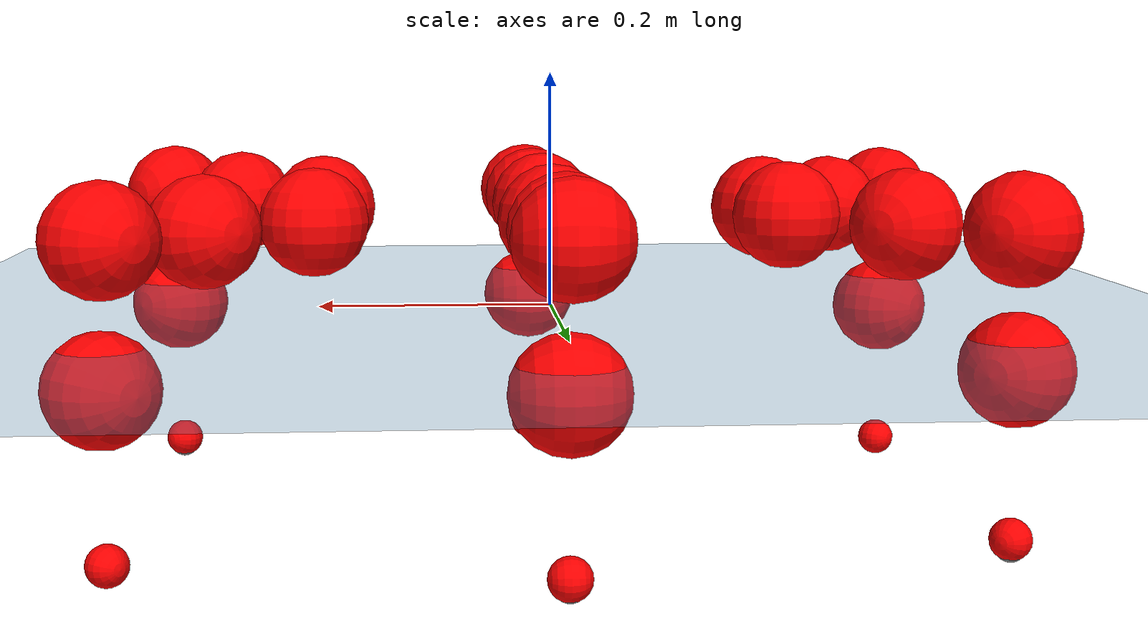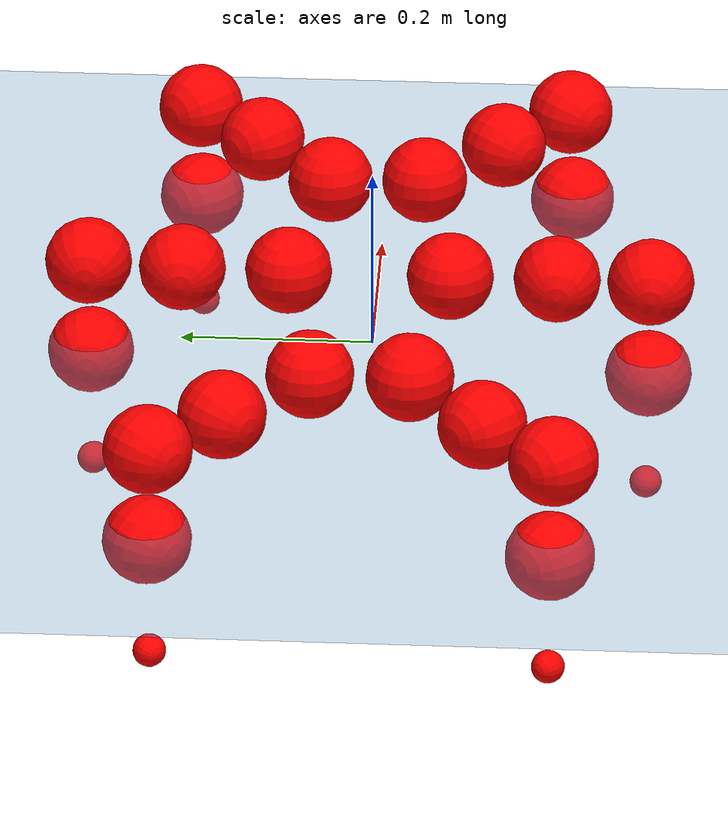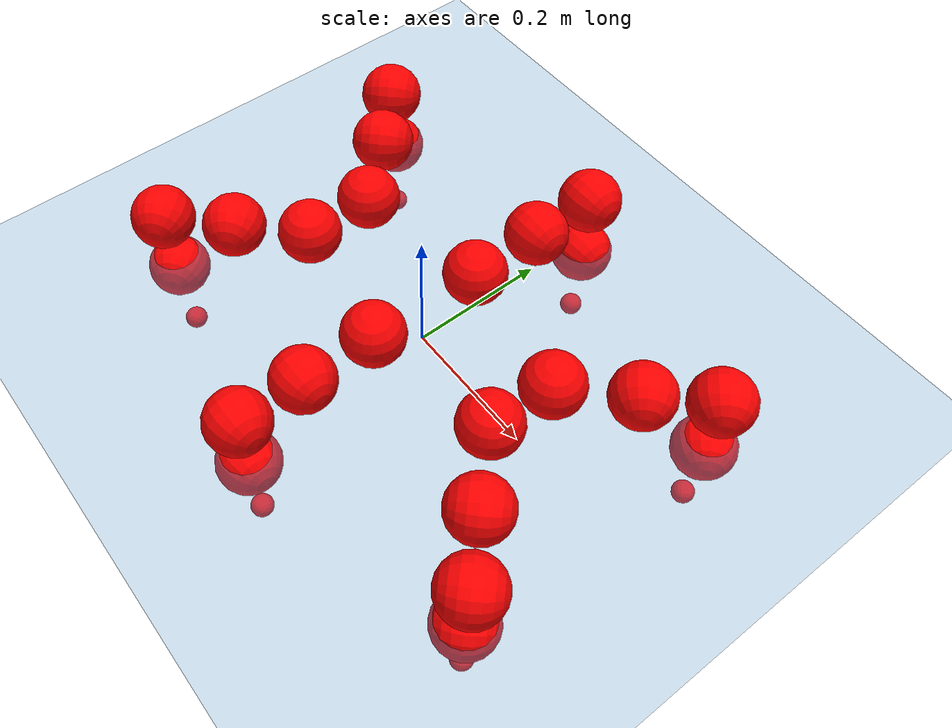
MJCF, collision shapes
<mujoco model="Golem">
  <compiler angle="radian" assetdir="assets" balanceinertia="true" inertiafromgeom="false"/>

  <option timestep="0.005" density="1.2" viscosity="2e-05"/>

  <size nkey="1"/>

  <visual>
    <quality shadowsize="8192"/>
    <map shadowclip="0.5"/>
  </visual>

  <default>
    <default class="/">
      <joint armature="0.01" damping="0.01" frictionloss="0.01"/>
      <geom contype="0" conaffinity="0" group="1" solref="-1000 -80"/>
      <site size="0.01 0.005 0.005" group="5"/>
      <general forcelimited="true" biastype="affine" gainprm="25" biasprm="0 -25 -0.5"/>
      <default class="visual">
        <geom type="mesh" group="2"/>
      </default>
      <default class="collision">
        <geom group="3"/>
      </default>
      <default class="foot">
        <geom size="0.01 0 0" condim="6" group="4" priority="1" solimp="0.015 1 0.01"/>
      </default>
      <default class="reward_collision_sphere">
        <geom group="5" rgba="1 0 0 1"/>
      </default>
    </default>
  </default>

  <asset>
    <texture type="skybox" colorspace="auto" name="//unnamed_texture_0" builtin="gradient" rgb1="0.95 0.95 0.95" rgb2="0.95 0.95 0.95" width="100" height="600"/>
    <texture type="2d" colorspace="auto" name="texplane" builtin="checker" rgb1="0.345 0.575 0.748" rgb2="0.345 0.575 0.748" markrgb="1 1 1" width="512" height="512"/>
    <material name="MatPlane" class="/" texture="texplane" texuniform="true" texrepeat="2 2" specular="0.9"/>
    <mesh name="body" class="/" file="body.stl" scale="0.001 0.001 0.001"/>
    <mesh name="coxa" class="/" file="coxa.stl" scale="0.001 0.001 0.001"/>
    <mesh name="femur" class="/" file="femur.stl" scale="0.001 0.001 0.001"/>
    <mesh name="tibia" class="/" file="tibia.stl" scale="0.001 0.001 0.001"/>
    <mesh name="tarsus" class="/" file="tarsus.stl" scale="0.001 0.001 0.001"/>
  </asset>

  <worldbody>
    <geom name="floor" class="/" size="100 100 0.125" type="plane" group="0" material="MatPlane"/>
    <light name="toplight_shadow" class="/" pos="0 0 5" dir="0.0990148 0.0990148 -0.990148" type="directional" ambient="0.04 0.04 0.04" diffuse="0.55 0.55 0.55" specular="0.12 0.12 0.12"/>
    <light name="toplight_fill" class="/" pos="0 0 5" dir="0.0990148 0.0990148 -0.990148" type="directional" castshadow="false" ambient="0.04 0.04 0.04" diffuse="0.3 0.3 0.3" specular="0.08 0.08 0.08"/>
    <body name="trunk" pos="0.00208723 0.0026369 0.00243717" quat="1 -8.51264e-05 2.79912e-05 4.87676e-05">
      <inertial pos="0.000736302 -0.000786279 -0.00135096" quat="1 0.000420799 -0.000479524 0.000302207" mass="5.33826" diaginertia="0.0285962 0.00643232 0.0270643"/>
      <joint name="//unnamed_joint_0" type="free"/>
      <geom name="//unnamed_geom_1" class="/" pos="0 0 0.0780358" quat="1 0 0 0" type="mesh" rgba="0.9 0.9 0.9 1" mesh="body"/>
      <site name="imu" class="/" pos="0.174251 0.0126712 0.12499" size="0.0112744"/>
      <camera name="track" class="/" pos="0 -1.83001 0" quat="0.707107 0.707107 0 0" mode="trackcom"/>
      <camera name="ego_camera" class="/" pos="0.162239 0 0.121931" quat="-0.5 -0.5 0.5 0.5"/>
      <body name="coxa_RR" pos="-0.222463 -0.0773229 0.0779482" quat="0.382628 0.000153324 0.000258344 -0.923903">
        <inertial pos="-0.0005484 -0.0017681 -0.00147681" quat="0.9999 0.00452003 -0.0133136 0.00149044" mass="0.278277" diaginertia="0.0290177 0.0061471 0.0258325"/>
        <joint name="coxa_joint_RR" class="/" pos="0 0 0" axis="-0.00492734 0.00109342 -0.999987" range="-3.13747 3.14552" armature="0.00989426" damping="0" frictionloss="0.0112009"/>
        <geom name="//unnamed_geom_2" class="/" type="mesh" rgba="0.2 0.2 0.2 1" mesh="coxa"/>
        <geom name="//unnamed_geom_3" class="reward_collision_sphere" size="0.0450975" pos="-0.0374399 0 0"/>
        <body name="femur_RR" pos="0.0716333 -0.00135218 -0.00440777" quat="0.499968 -0.500027 0.49982 0.500185">
          <inertial pos="-0.00220329 -0.00154779 -0.000130224" quat="0.999993 0.00343544 -4.64355e-05 -0.0012565" mass="0.288729" diaginertia="0.0305611 0.00650156 0.0276026"/>
          <joint name="femur_joint_RR" class="/" pos="0 0 0" axis="-0.000743575 -0.00181928 -0.999998" range="-3.19086 3.08233" armature="0.0111422" damping="0.00964315" frictionloss="0.0127924"/>
          <geom name="//unnamed_geom_4" class="/" type="mesh" rgba="0.9 0.9 0.9 1" mesh="femur"/>
          <geom name="//unnamed_geom_5" class="reward_collision_sphere" size="0.0450975"/>
          <body name="tibia_RR" pos="-0.00422499 -0.101196 0.00202462" quat="-0.000878302 1 5.9013e-05 -2.56077e-05">
            <inertial pos="-0.00258633 0.000300879 0.000243312" quat="1 -0.00011192 -6.72896e-05 -5.21196e-06" mass="0.286766" diaginertia="0.0296535 0.00617193 0.0251667"/>
            <joint name="tibia_joint_RR" class="/" pos="0 0 0" axis="-0.00843816 -0.00859176 0.999927" range="-3.10069 3.19277" armature="0.0117368" damping="0.000657352" frictionloss="0.0112187"/>
            <geom name="//unnamed_geom_6" class="/" type="mesh" rgba="0.2 0.2 0.2 1" mesh="tibia"/>
            <geom name="//unnamed_geom_7" class="reward_collision_sphere" size="0.0450975"/>
            <body name="tarsus_RR" pos="0.111633 -0.000583583 0.00206216" quat="1 9.74372e-05 1.2729e-05 4.99064e-06">
              <inertial pos="0.0780697 0.000466508 0.00213964" quat="0.500079 0.500425 0.500082 0.499413" mass="0.29046" diaginertia="0.0305196 0.00660544 0.0274074"/>
              <joint name="tarsus_joint_RR" class="/" pos="0 0 0" axis="0.00440953 -0.00575038 0.999974" range="-3.19052 3.19418" armature="0.0110671" damping="0.0378861" frictionloss="0.0100548"/>
              <geom name="//unnamed_geom_8" class="/" type="mesh" rgba="0.9 0.9 0.9 1" mesh="tarsus"/>
              <geom name="foot_1" class="foot" size="0.0113383" pos="0.139776 0 0" quat="0 -0.707107 0 0.707107"/>
              <geom name="//unnamed_geom_10" class="reward_collision_sphere" size="0.0450975"/>
              <geom name="//unnamed_geom_11" class="reward_collision_sphere" size="0.0169116" pos="0.13416 0 0"/>
              <site name="foot_1" class="foot" pos="0.139776 0 0" quat="0 -0.707107 0 0.707107" size="0.0112744"/>
            </body>
          </body>
        </body>
      </body>
      <body name="coxa_RM" pos="-0.000264086 -0.120621 0.0798413" quat="0.706178 0.000107519 0.00037621 -0.708034">
        <inertial pos="0.00294305 0.000328998 -0.00180805" quat="0.99995 -0.00012165 0.0082233 -0.00571332" mass="0.280875" diaginertia="0.0294716 0.00628113 0.0279917"/>
        <joint name="coxa_joint_RM" class="/" pos="0 0 0" axis="-0.000315384 -4.36507e-06 -1" stiffness="0.00760881" range="-3.16762 3.12746" armature="0.0110836" damping="0.0011192" frictionloss="0.0105595"/>
        <geom name="//unnamed_geom_12" class="/" type="mesh" rgba="0.2 0.2 0.2 1" mesh="coxa"/>
        <geom name="//unnamed_geom_13" class="reward_collision_sphere" size="0.0450975" pos="-0.0374399 0 0"/>
        <body name="femur_RM" pos="0.0730689 0.00243002 -0.00114576" quat="0.500806 -0.499871 0.500072 0.499249">
          <inertial pos="-8.6848e-05 -0.00192511 7.78157e-07" quat="0.999982 -0.00226771 0.00095499 -0.00543296" mass="0.294523" diaginertia="0.0308928 0.00633146 0.027736"/>
          <joint name="femur_joint_RM" class="/" pos="0 0 0" axis="-0.0129135 4.67041e-05 -0.999917" stiffness="0.00888419" range="-3.16018 3.1415" armature="0.0100993" damping="0.0273691" frictionloss="0.0113231"/>
          <geom name="//unnamed_geom_14" class="/" type="mesh" rgba="0.9 0.9 0.9 1" mesh="femur"/>
          <geom name="//unnamed_geom_15" class="reward_collision_sphere" size="0.0450975"/>
          <body name="tibia_RM" pos="0.00141081 -0.0968044 0.00172094" quat="0.000147195 1 8.14996e-05 9.8754e-05">
            <inertial pos="0.0028447 -0.00201161 -0.000109812" quat="0.999923 0.00943623 0.00802776 -0.000787573" mass="0.272857" diaginertia="0.0296351 0.00644363 0.0267823"/>
            <joint name="tibia_joint_RM" class="/" pos="0 0 0" axis="-0.000124846 -0.000102363 1" range="-3.18931 3.1651" armature="0.0112296" damping="0.013573" frictionloss="0.01121"/>
            <geom name="//unnamed_geom_16" class="/" type="mesh" rgba="0.2 0.2 0.2 1" mesh="tibia"/>
            <geom name="//unnamed_geom_17" class="reward_collision_sphere" size="0.0450975"/>
            <body name="tarsus_RM" pos="0.109201 -0.000182738 0.00309587" quat="1 -0.000104243 -7.08616e-05 9.69349e-05">
              <inertial pos="0.075247 -0.00239265 0.00300173" quat="0.49762 0.493502 0.502397 0.506387" mass="0.294246" diaginertia="0.0293622 0.00621207 0.0260565"/>
              <joint name="tarsus_joint_RM" class="/" pos="0 0 0" axis="-0.00187773 -0.000216384 0.999998" range="-3.08454 3.12989" armature="0.0122751" damping="0.0129253" frictionloss="0.0109702"/>
              <geom name="//unnamed_geom_18" class="/" type="mesh" rgba="0.9 0.9 0.9 1" mesh="tarsus"/>
              <geom name="foot_2" class="foot" size="0.0114686" pos="0.139776 0 0" quat="0 -0.707107 0 0.707107"/>
              <geom name="//unnamed_geom_20" class="reward_collision_sphere" size="0.0450975"/>
              <geom name="//unnamed_geom_21" class="reward_collision_sphere" size="0.0169116" pos="0.13416 0 0"/>
              <site name="foot_2" class="foot" pos="0.139776 0 0" quat="0 -0.707107 0 0.707107" size="0.0112744"/>
            </body>
          </body>
        </body>
      </body>
      <body name="coxa_RF" pos="0.221064 -0.0742885 0.0801156" quat="0.923684 -9.45515e-05 0.000364487 -0.383154">
        <inertial pos="-0.000530064 0.00250996 -0.000284383" quat="0.999999 -0.000988164 -0.000102966 0.000462872" mass="0.282664" diaginertia="0.0303176 0.0064494 0.0260872"/>
        <joint name="coxa_joint_RF" class="/" pos="0 0 0" axis="-0.000981142 0.00222058 -0.999997" range="-3.14488 3.14041" armature="0.0127812" damping="0.00926405" frictionloss="0.0107987"/>
        <geom name="//unnamed_geom_22" class="/" type="mesh" rgba="0.2 0.2 0.2 1" mesh="coxa"/>
        <geom name="//unnamed_geom_23" class="reward_collision_sphere" size="0.0450975" pos="-0.0374399 0 0"/>
        <body name="femur_RF" pos="0.0758087 -0.00125616 -0.000627772" quat="0.499798 -0.499657 0.500547 0.499998">
          <inertial pos="0.00180472 -0.00287392 -0.000558299" quat="0.999959 -0.00338838 0.00304375 0.00785835" mass="0.278202" diaginertia="0.0302512 0.0060343 0.0270022"/>
          <joint name="femur_joint_RF" class="/" pos="0 0 0" axis="-0.000737456 0.000514912 -1" stiffness="0.00544699" range="-3.17887 3.1541" armature="0.00966317" damping="0.00926189" frictionloss="0.0128525"/>
          <geom name="//unnamed_geom_24" class="/" type="mesh" rgba="0.9 0.9 0.9 1" mesh="femur"/>
          <geom name="//unnamed_geom_25" class="reward_collision_sphere" size="0.0450975"/>
          <body name="tibia_RF" pos="-0.00258147 -0.0992154 0.00104603" quat="-7.69825e-06 1 -1.39279e-05 2.64998e-06">
            <inertial pos="-0.0015227 0.000677268 0.000353905" quat="0.999999 -0.00103627 -0.000243215 0.000226162" mass="0.293849" diaginertia="0.0291653 0.00660753 0.026593"/>
            <joint name="tibia_joint_RF" class="/" pos="0 0 0" axis="0.00638128 0.00603971 0.999961" range="-3.1435 3.10058" armature="0.0105966" damping="0.00569961" frictionloss="0.0112209"/>
            <geom name="//unnamed_geom_26" class="/" type="mesh" rgba="0.2 0.2 0.2 1" mesh="tibia"/>
            <geom name="//unnamed_geom_27" class="reward_collision_sphere" size="0.0450975"/>
            <body name="tarsus_RF" pos="0.106468 0.00190595 0.00319502" quat="0.999999 0.000126405 -0.00104245 -0.000377585">
              <inertial pos="0.0743754 -0.000302887 0.000161046" quat="0.500107 0.500731 0.500695 0.498464" mass="0.289144" diaginertia="0.0299112 0.00642283 0.0277132"/>
              <joint name="tarsus_joint_RF" class="/" pos="0 0 0" axis="0.00401204 -0.0145223 0.999886" range="-3.17095 3.13655" armature="0.0127257" damping="0.0145258" frictionloss="0.00997841"/>
              <geom name="//unnamed_geom_28" class="/" type="mesh" rgba="0.9 0.9 0.9 1" mesh="tarsus"/>
              <geom name="foot_3" class="foot" size="0.0123597" pos="0.139776 0 0" quat="0 -0.707107 0 0.707107"/>
              <geom name="//unnamed_geom_30" class="reward_collision_sphere" size="0.0450975"/>
              <geom name="//unnamed_geom_31" class="reward_collision_sphere" size="0.0169116" pos="0.13416 0 0"/>
              <site name="foot_3" class="foot" pos="0.139776 0 0" quat="0 -0.707107 0 0.707107" size="0.0112744"/>
            </body>
          </body>
        </body>
      </body>
      <body name="coxa_LR" pos="-0.22388 0.0767152 0.079424" quat="0.382679 0.000251915 -0.000247491 0.923881">
        <inertial pos="-0.00217168 0.00196565 -0.00104665" quat="0.999955 0.00408156 -0.000220232 0.00851095" mass="0.286329" diaginertia="0.0313065 0.00675333 0.028211"/>
        <joint name="coxa_joint_LR" class="/" pos="0 0 0" axis="-0.00252004 -0.0129033 -0.999914" stiffness="0.0112922" range="-3.14772 3.09147" armature="0.0097993" damping="0" frictionloss="0.00971623"/>
        <geom name="//unnamed_geom_32" class="/" type="mesh" rgba="0.2 0.2 0.2 1" mesh="coxa"/>
        <geom name="//unnamed_geom_33" class="reward_collision_sphere" size="0.0450975" pos="-0.0374399 0 0"/>
        <body name="femur_LR" pos="0.0777004 -0.00253409 -0.000602129" quat="0.49986 -0.499964 0.500271 0.499905">
          <inertial pos="-0.00140181 -0.00110552 0.00079156" quat="0.999922 0.0106095 -0.0031112 -0.00587571" mass="0.286158" diaginertia="0.0305339 0.00664634 0.0273153"/>
          <joint name="femur_joint_LR" class="/" pos="0 0 0" axis="-0.00584042 -0.0122544 0.999908" range="-3.12696 3.15618" armature="0.0110485" damping="0" frictionloss="0.0103312"/>
          <geom name="//unnamed_geom_34" class="/" type="mesh" rgba="0.9 0.9 0.9 1" mesh="femur"/>
          <geom name="//unnamed_geom_35" class="reward_collision_sphere" size="0.0450975"/>
          <body name="tibia_LR" pos="-0.00206362 -0.0989563 0.00207152" quat="0.000782816 0.999999 -0.00067964 -0.000668323">
            <inertial pos="-0.000549477 -0.000522715 0.000447246" quat="0.999992 0.00143622 0.00329309 -0.00189391" mass="0.298198" diaginertia="0.0308838 0.00655141 0.0280772"/>
            <joint name="tibia_joint_LR" class="/" pos="0 0 0" axis="0.000723842 -0.0107316 -0.999942" range="-3.18691 3.0836" armature="0.0117674" damping="0.0027869" frictionloss="0.0107557"/>
            <geom name="//unnamed_geom_36" class="/" type="mesh" rgba="0.2 0.2 0.2 1" mesh="tibia"/>
            <geom name="//unnamed_geom_37" class="reward_collision_sphere" size="0.0450975"/>
            <body name="tarsus_LR" pos="0.108149 0.000528841 0.00302166" quat="0.999999 -0.000141729 0.0010142 -0.000504463">
              <inertial pos="0.077251 0.000246888 -0.00168603" quat="0.500823 0.501122 0.498109 0.499941" mass="0.279801" diaginertia="0.0307707 0.006255 0.027559"/>
              <joint name="tarsus_joint_LR" class="/" pos="0 0 0" axis="-0.00909362 -0.0033313 -0.999953" range="-3.19325 3.08576" armature="0.0107098" damping="0" frictionloss="0.0119418"/>
              <geom name="//unnamed_geom_38" class="/" type="mesh" rgba="0.9 0.9 0.9 1" mesh="tarsus"/>
              <geom name="foot_4" class="foot" size="0.0124689" pos="0.139776 0 0" quat="0.707107 0 -0.707107 0"/>
              <geom name="//unnamed_geom_40" class="reward_collision_sphere" size="0.0450975"/>
              <geom name="//unnamed_geom_41" class="reward_collision_sphere" size="0.0169116" pos="0.13416 0 0"/>
              <site name="foot_4" class="foot" pos="0.139776 0 0" quat="0.707107 0 -0.707107 0" size="0.0112744"/>
            </body>
          </body>
        </body>
      </body>
      <body name="coxa_LM" pos="0.0024046 0.121838 0.0804246" quat="0.707249 0.0012921 0.000208326 0.706963">
        <inertial pos="0.000631878 -0.00128324 -0.00144957" quat="0.999905 0.00834628 0.0109488 0.00102205" mass="0.281738" diaginertia="0.0288868 0.00623307 0.0266376"/>
        <joint name="coxa_joint_LM" class="/" pos="0 0 0" axis="-0.00484956 -0.000363321 -0.999988" range="-3.08561 3.12145" armature="0.0123929" damping="0.0233716" frictionloss="0.0128382"/>
        <geom name="//unnamed_geom_42" class="/" type="mesh" rgba="0.2 0.2 0.2 1" mesh="coxa"/>
        <geom name="//unnamed_geom_43" class="reward_collision_sphere" size="0.0450975" pos="-0.0374399 0 0"/>
        <body name="femur_LM" pos="0.0726204 0.00183773 0.00130371" quat="0.500733 -0.499994 0.500298 0.498974">
          <inertial pos="0.00216694 -0.00281776 0.00159312" quat="0.999944 0.00910736 -0.00540788 0.000123112" mass="0.287457" diaginertia="0.0313094 0.00633639 0.027546"/>
          <joint name="femur_joint_LM" class="/" pos="0 0 0" axis="-0.0102759 0.0114449 0.999882" range="-3.14656 3.08409" armature="0.0126198" damping="0" frictionloss="0.0114279"/>
          <geom name="//unnamed_geom_44" class="/" type="mesh" rgba="0.9 0.9 0.9 1" mesh="femur"/>
          <geom name="//unnamed_geom_45" class="reward_collision_sphere" size="0.0450975"/>
          <body name="tibia_LM" pos="-0.00296964 -0.0976603 -0.00218981" quat="-0.000812217 1 8.85562e-05 3.86236e-05">
            <inertial pos="-0.000220454 -0.00240497 0.000898733" quat="0.999903 0.00759352 0.00511254 -0.0104814" mass="0.282048" diaginertia="0.0306791 0.00661384 0.0273035"/>
            <joint name="tibia_joint_LM" class="/" pos="0 0 0" axis="-0.00167632 -0.000210803 -0.999999" range="-3.12967 3.15325" armature="0.0125207" damping="0.00657635" frictionloss="0.00990898"/>
            <geom name="//unnamed_geom_46" class="/" type="mesh" rgba="0.2 0.2 0.2 1" mesh="tibia"/>
            <geom name="//unnamed_geom_47" class="reward_collision_sphere" size="0.0450975"/>
            <body name="tarsus_LM" pos="0.109532 -0.000152772 0.00240705" quat="1 -0.000609116 -4.40223e-06 -0.000234948">
              <inertial pos="0.072017 -0.000403134 -0.00234481" quat="0.500113 0.499938 0.500404 0.499545" mass="0.290662" diaginertia="0.0290786 0.00630478 0.0273368"/>
              <joint name="tarsus_joint_LM" class="/" pos="0 0 0" axis="0.00360845 -0.00300971 -0.999989" range="-3.1069 3.13934" armature="0.0127213" damping="0.00668121" frictionloss="0.0121869"/>
              <geom name="//unnamed_geom_48" class="/" type="mesh" rgba="0.9 0.9 0.9 1" mesh="tarsus"/>
              <geom name="foot_5" class="foot" size="0.0120352" pos="0.139776 0 0" quat="0.707107 0 -0.707107 0"/>
              <geom name="//unnamed_geom_50" class="reward_collision_sphere" size="0.0450975"/>
              <geom name="//unnamed_geom_51" class="reward_collision_sphere" size="0.0169116" pos="0.13416 0 0"/>
              <site name="foot_5" class="foot" pos="0.139776 0 0" quat="0.707107 0 -0.707107 0" size="0.0112744"/>
            </body>
          </body>
        </body>
      </body>
      <body name="coxa_LF" pos="0.22383 0.0785448 0.076056" quat="0.924095 -0.000194463 8.58223e-05 0.382162">
        <inertial pos="0.000428518 -0.000692487 -0.00142965" quat="0.999901 -0.0101097 0.00976188 0.0011436" mass="0.270569" diaginertia="0.0292582 0.00629882 0.0266067"/>
        <joint name="coxa_joint_LF" class="/" pos="0 0 0" axis="0.00338827 0.00143789 -0.999993" stiffness="0.0160428" range="-3.17956 3.17108" armature="0.0125571" damping="0.0102816" frictionloss="0.00969476"/>
        <geom name="//unnamed_geom_52" class="/" type="mesh" rgba="0.2 0.2 0.2 1" mesh="coxa"/>
        <geom name="//unnamed_geom_53" class="reward_collision_sphere" size="0.0450975" pos="-0.0374399 0 0"/>
        <body name="femur_LF" pos="0.0747883 -0.00202031 0.000518385" quat="0.500186 -0.500484 0.500219 0.499109">
          <inertial pos="0.00174098 -0.000472651 -0.000729992" quat="0.999999 0.00130911 0.000399543 -0.000514262" mass="0.287042" diaginertia="0.0299603 0.00633752 0.025857"/>
          <joint name="femur_joint_LF" class="/" pos="0 0 0" axis="0.00037168 0.00185692 0.999998" range="-3.08525 3.12906" armature="0.0127233" damping="0.0185017" frictionloss="0.011203"/>
          <geom name="//unnamed_geom_54" class="/" type="mesh" rgba="0.9 0.9 0.9 1" mesh="femur"/>
          <geom name="//unnamed_geom_55" class="reward_collision_sphere" size="0.0450975"/>
          <body name="tibia_LF" pos="-0.000930288 -0.0973134 0.00305551" quat="0.000360996 1 -0.000205734 0.000183671">
            <inertial pos="-0.000251203 0.0029252 0.00188339" quat="0.999997 0.00207034 -0.000453728 0.00111483" mass="0.280046" diaginertia="0.0301592 0.00635742 0.0269632"/>
            <joint name="tibia_joint_LF" class="/" pos="0 0 0" axis="-0.00251749 -0.00400493 -0.999989" range="-3.14228 3.12052" armature="0.00961437" damping="0" frictionloss="0.0125706"/>
            <geom name="//unnamed_geom_56" class="/" type="mesh" rgba="0.2 0.2 0.2 1" mesh="tibia"/>
            <geom name="//unnamed_geom_57" class="reward_collision_sphere" size="0.0450975"/>
            <body name="tarsus_LF" pos="0.112083 0.00194656 0.00123142" quat="0.999999 0.00070713 -0.000303396 -0.000755903">
              <inertial pos="0.075859 -0.000808769 -0.00215852" quat="0.510005 0.500328 0.489998 0.499467" mass="0.297069" diaginertia="0.0300991 0.00667421 0.0278727"/>
              <joint name="tarsus_joint_LF" class="/" pos="0 0 0" axis="-0.0075158 -0.00839821 -0.999936" stiffness="0.0313987" range="-3.19502 3.18092" armature="0.0112112" damping="0.0206937" frictionloss="0.0117872"/>
              <geom name="//unnamed_geom_58" class="/" type="mesh" rgba="0.9 0.9 0.9 1" mesh="tarsus"/>
              <geom name="foot_6" class="foot" size="0.0107265" pos="0.139776 0 0" quat="0.707107 0 -0.707107 0"/>
              <geom name="//unnamed_geom_60" class="reward_collision_sphere" size="0.0450975"/>
              <geom name="//unnamed_geom_61" class="reward_collision_sphere" size="0.0169116" pos="0.13416 0 0"/>
              <site name="foot_6" class="foot" pos="0.139776 0 0" quat="0.707107 0 -0.707107 0" size="0.0112744"/>
            </body>
          </body>
        </body>
      </body>
    </body>
  </worldbody>

  <contact>
    <pair class="/" geom1="floor" geom2="foot_1" name="//unnamed_contact_0"/>
    <pair class="/" geom1="floor" geom2="foot_2" name="//unnamed_contact_1"/>
    <pair class="/" geom1="floor" geom2="foot_3" name="//unnamed_contact_2"/>
    <pair class="/" geom1="floor" geom2="foot_4" name="//unnamed_contact_3"/>
    <pair class="/" geom1="floor" geom2="foot_5" name="//unnamed_contact_4"/>
    <pair class="/" geom1="floor" geom2="foot_6" name="//unnamed_contact_5"/>
  </contact>

  <actuator>
    <general name="coxa_joint_RR" class="/" joint="coxa_joint_RR" forcerange="-7.89873 7.89873" gainprm="26.6307" biasprm="0 -26.6307 -0.603673"/>
    <general name="femur_joint_RR" class="/" joint="femur_joint_RR" forcerange="-8.32932 8.32932" gainprm="26.6307" biasprm="0 -26.6307 -0.603673"/>
    <general name="tibia_joint_RR" class="/" joint="tibia_joint_RR" forcerange="-8.38762 8.38762" gainprm="26.6307" biasprm="0 -26.6307 -0.603673"/>
    <general name="tarsus_joint_RR" class="/" joint="tarsus_joint_RR" forcerange="-9.10151 9.10151" gainprm="26.6307" biasprm="0 -26.6307 -0.603673"/>
    <general name="coxa_joint_RM" class="/" joint="coxa_joint_RM" forcerange="-7.64558 7.64558" gainprm="26.6307" biasprm="0 -26.6307 -0.603673"/>
    <general name="femur_joint_RM" class="/" joint="femur_joint_RM" forcerange="-8.36753 8.36753" gainprm="26.6307" biasprm="0 -26.6307 -0.603673"/>
    <general name="tibia_joint_RM" class="/" joint="tibia_joint_RM" forcerange="-7.39617 7.39617" gainprm="26.6307" biasprm="0 -26.6307 -0.603673"/>
    <general name="tarsus_joint_RM" class="/" joint="tarsus_joint_RM" forcerange="-7.9075 7.9075" gainprm="26.6307" biasprm="0 -26.6307 -0.603673"/>
    <general name="coxa_joint_RF" class="/" joint="coxa_joint_RF" forcerange="-7.5435 7.5435" gainprm="26.6307" biasprm="0 -26.6307 -0.603673"/>
    <general name="femur_joint_RF" class="/" joint="femur_joint_RF" forcerange="-7.46199 7.46199" gainprm="26.6307" biasprm="0 -26.6307 -0.603673"/>
    <general name="tibia_joint_RF" class="/" joint="tibia_joint_RF" forcerange="-7.72304 7.72304" gainprm="26.6307" biasprm="0 -26.6307 -0.603673"/>
    <general name="tarsus_joint_RF" class="/" joint="tarsus_joint_RF" forcerange="-8.95758 8.95758" gainprm="26.6307" biasprm="0 -26.6307 -0.603673"/>
    <general name="coxa_joint_LR" class="/" joint="coxa_joint_LR" forcerange="-8.22569 8.22569" gainprm="26.6307" biasprm="0 -26.6307 -0.603673"/>
    <general name="femur_joint_LR" class="/" joint="femur_joint_LR" forcerange="-8.09144 8.09144" gainprm="26.6307" biasprm="0 -26.6307 -0.603673"/>
    <general name="tibia_joint_LR" class="/" joint="tibia_joint_LR" forcerange="-8.37281 8.37281" gainprm="26.6307" biasprm="0 -26.6307 -0.603673"/>
    <general name="tarsus_joint_LR" class="/" joint="tarsus_joint_LR" forcerange="-8.60721 8.60721" gainprm="26.6307" biasprm="0 -26.6307 -0.603673"/>
    <general name="coxa_joint_LM" class="/" joint="coxa_joint_LM" forcerange="-9.06783 9.06783" gainprm="26.6307" biasprm="0 -26.6307 -0.603673"/>
    <general name="femur_joint_LM" class="/" joint="femur_joint_LM" forcerange="-8.23991 8.23991" gainprm="26.6307" biasprm="0 -26.6307 -0.603673"/>
    <general name="tibia_joint_LM" class="/" joint="tibia_joint_LM" forcerange="-8.54185 8.54185" gainprm="26.6307" biasprm="0 -26.6307 -0.603673"/>
    <general name="tarsus_joint_LM" class="/" joint="tarsus_joint_LM" forcerange="-8.06816 8.06816" gainprm="26.6307" biasprm="0 -26.6307 -0.603673"/>
    <general name="coxa_joint_LF" class="/" joint="coxa_joint_LF" forcerange="-7.77055 7.77055" gainprm="26.6307" biasprm="0 -26.6307 -0.603673"/>
    <general name="femur_joint_LF" class="/" joint="femur_joint_LF" forcerange="-8.30496 8.30496" gainprm="26.6307" biasprm="0 -26.6307 -0.603673"/>
    <general name="tibia_joint_LF" class="/" joint="tibia_joint_LF" forcerange="-8.1674 8.1674" gainprm="26.6307" biasprm="0 -26.6307 -0.603673"/>
    <general name="tarsus_joint_LF" class="/" joint="tarsus_joint_LF" forcerange="-7.45303 7.45303" gainprm="26.6307" biasprm="0 -26.6307 -0.603673"/>
  </actuator>

  <sensor>
    <gyro site="imu" name="imu_angular_velocity"/>
    <velocimeter site="imu" name="imu_linear_velocity"/>
    <framelinvel objtype="site" objname="foot_1" name="foot_1_global_linear_velocity"/>
    <framelinvel objtype="site" objname="foot_2" name="foot_2_global_linear_velocity"/>
    <framelinvel objtype="site" objname="foot_3" name="foot_3_global_linear_velocity"/>
    <framelinvel objtype="site" objname="foot_4" name="foot_4_global_linear_velocity"/>
    <framelinvel objtype="site" objname="foot_5" name="foot_5_global_linear_velocity"/>
    <framelinvel objtype="site" objname="foot_6" name="foot_6_global_linear_velocity"/>
  </sensor>

  <keyframe>
    <key name="home" qpos="0 0 0.1457 1 0 0 0 0 0 0 0 0 0 0 0 0 0 0 0 0 0 0 0 0 0 0 0 0 0 0 0"/>
  </keyframe>
</mujoco>
